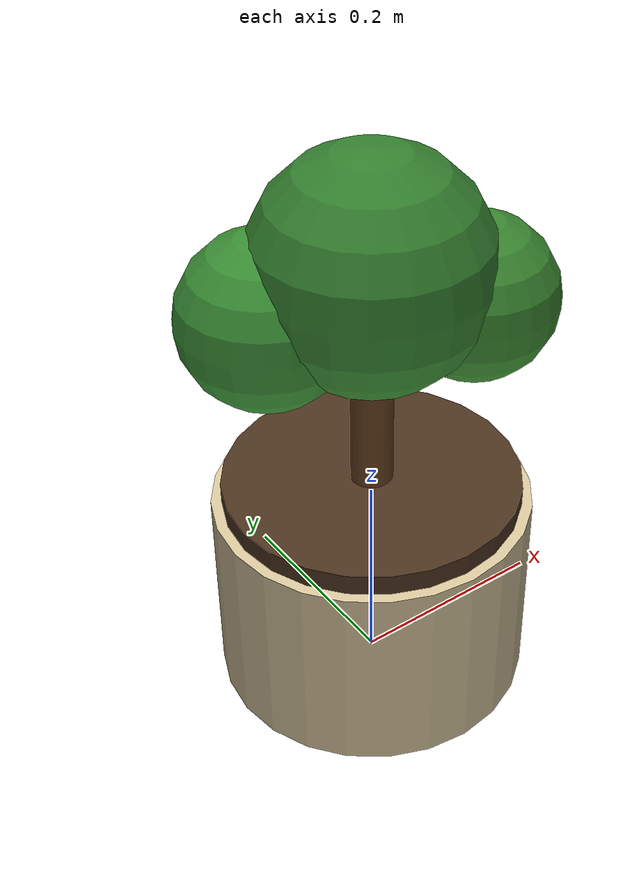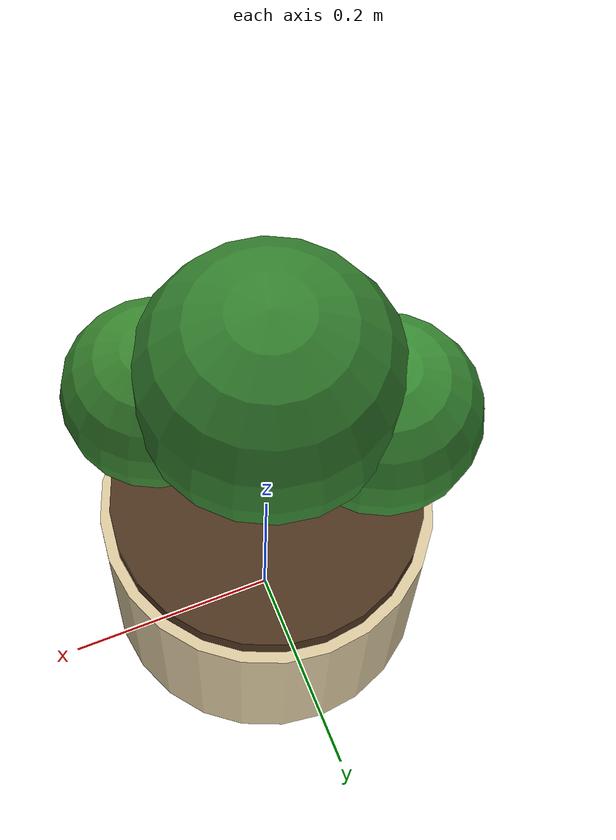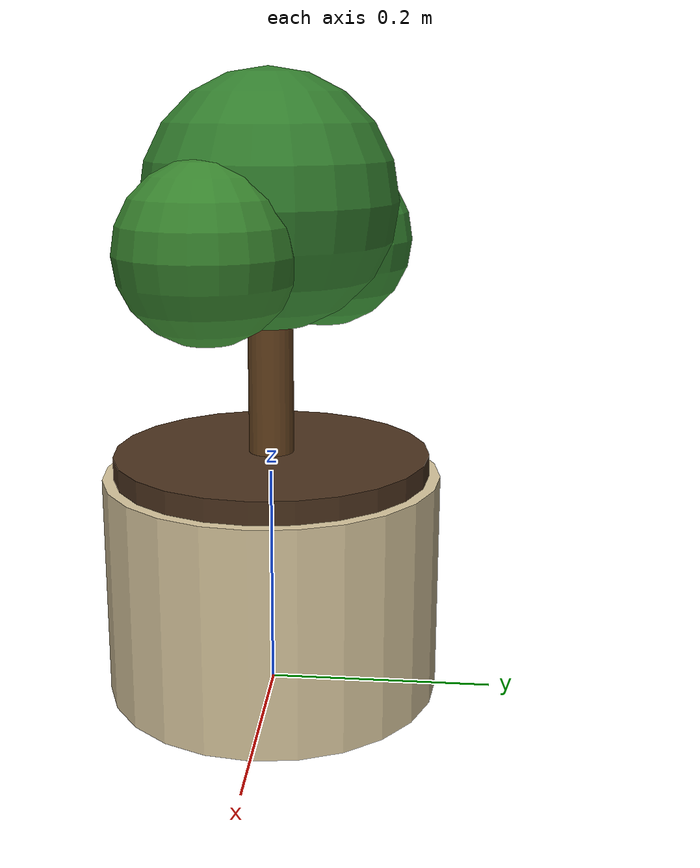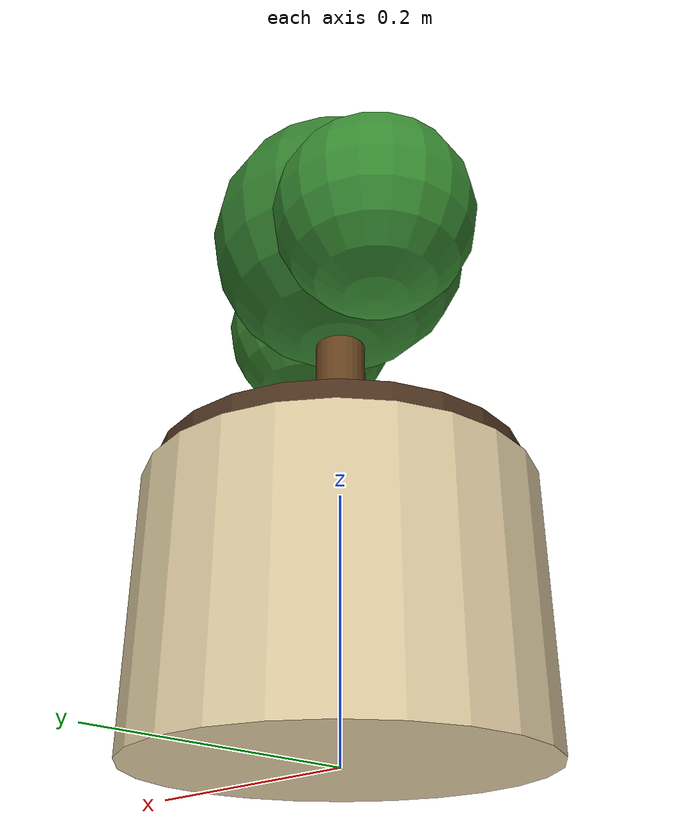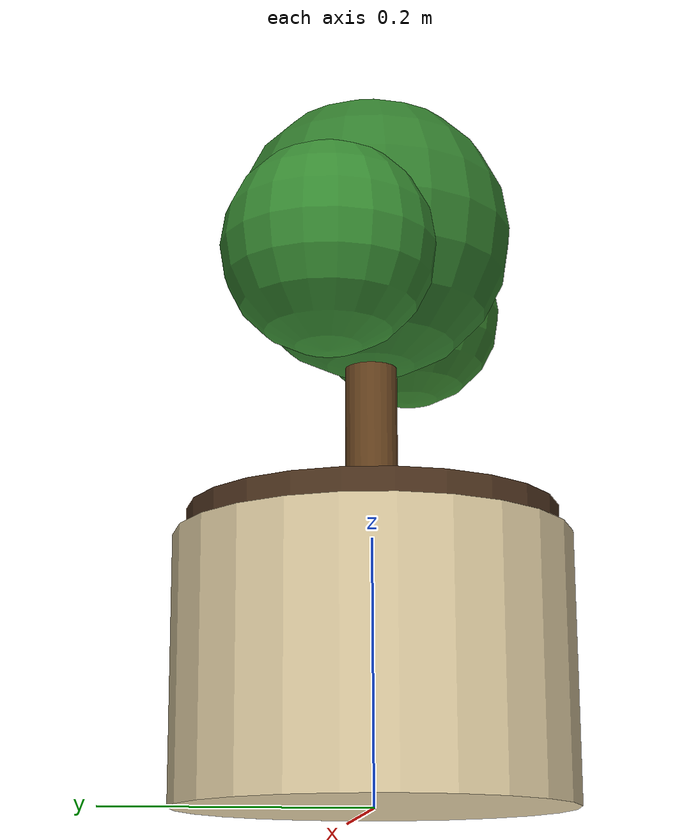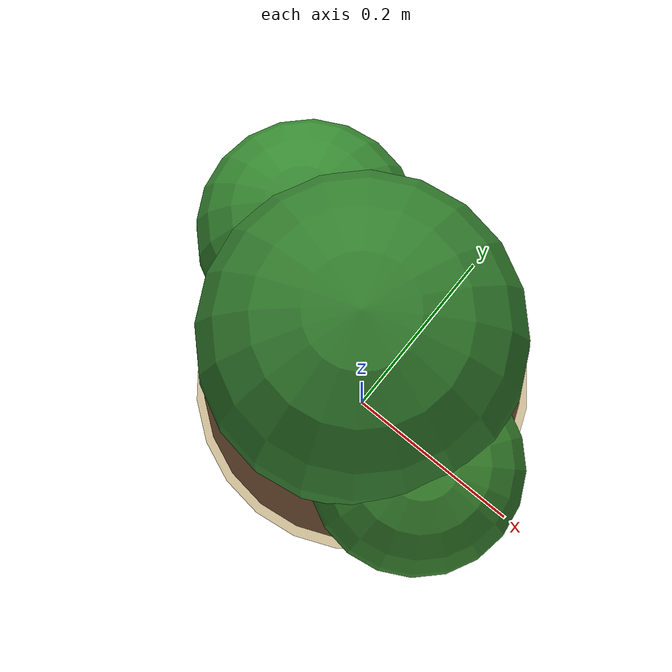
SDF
<?xml version='1.0' encoding='utf-8'?>
<sdf version="1.7">
  <model name="bonsai_tree">
    <static>true</static>
    <!-- 카페 분재. 도자기 화분(d0.30) + 흙 + 줄기 + 잎 클러스터 3개.
         total height ~0.50m. 바닥/테이블 올림 모두 가능 (z=0 floor 기준). -->

    <!-- 화분: cylinder d0.30 h0.20, 베이지 도자기 -->
    <link name="pot">
      <pose>0 0 0.100 0 0 0</pose>
      <visual name="v">
        <geometry><cylinder><radius>0.150</radius><length>0.200</length></cylinder></geometry>
        <material>
          <ambient>0.45 0.40 0.32 1</ambient>
          <diffuse>0.85 0.78 0.62 1</diffuse>
          <specular>0.30 0.28 0.22 1</specular>
        </material>
      </visual>
      <collision name="c">
        <geometry><cylinder><radius>0.150</radius><length>0.200</length></cylinder></geometry>
      </collision>
    </link>

    <!-- 흙: cylinder d0.28 h0.02, 화분 상단 -->
    <link name="soil">
      <pose>0 0 0.210 0 0 0</pose>
      <visual name="v">
        <geometry><cylinder><radius>0.140</radius><length>0.020</length></cylinder></geometry>
        <material>
          <ambient>0.20 0.13 0.08 1</ambient>
          <diffuse>0.30 0.20 0.12 1</diffuse>
          <specular>0.05 0.05 0.05 1</specular>
        </material>
      </visual>
    </link>

    <!-- 줄기: cylinder d0.04 h0.20, 화분 위 -->
    <link name="trunk">
      <pose>0 0 0.320 0 0 0</pose>
      <visual name="v">
        <geometry><cylinder><radius>0.020</radius><length>0.200</length></cylinder></geometry>
        <material>
          <ambient>0.25 0.16 0.08 1</ambient>
          <diffuse>0.40 0.26 0.12 1</diffuse>
          <specular>0.10 0.08 0.05 1</specular>
        </material>
      </visual>
    </link>

    <!-- 잎 클러스터 3개 — 짙은 녹색 sphere -->
    <link name="foliage_main">
      <pose>0 0 0.440 0 0 0</pose>
      <visual name="v">
        <geometry><sphere><radius>0.110</radius></sphere></geometry>
        <material>
          <ambient>0.10 0.25 0.10 1</ambient>
          <diffuse>0.20 0.50 0.18 1</diffuse>
          <specular>0.10 0.15 0.08 1</specular>
        </material>
      </visual>
    </link>
    <link name="foliage_left">
      <pose>-0.080 0.040 0.400 0 0 0</pose>
      <visual name="v">
        <geometry><sphere><radius>0.080</radius></sphere></geometry>
        <material>
          <ambient>0.10 0.22 0.10 1</ambient>
          <diffuse>0.22 0.55 0.20 1</diffuse>
          <specular>0.10 0.15 0.08 1</specular>
        </material>
      </visual>
    </link>
    <link name="foliage_right">
      <pose>0.080 -0.040 0.405 0 0 0</pose>
      <visual name="v">
        <geometry><sphere><radius>0.075</radius></sphere></geometry>
        <material>
          <ambient>0.10 0.22 0.10 1</ambient>
          <diffuse>0.22 0.52 0.18 1</diffuse>
          <specular>0.10 0.15 0.08 1</specular>
        </material>
      </visual>
    </link>
  </model>
</sdf>
